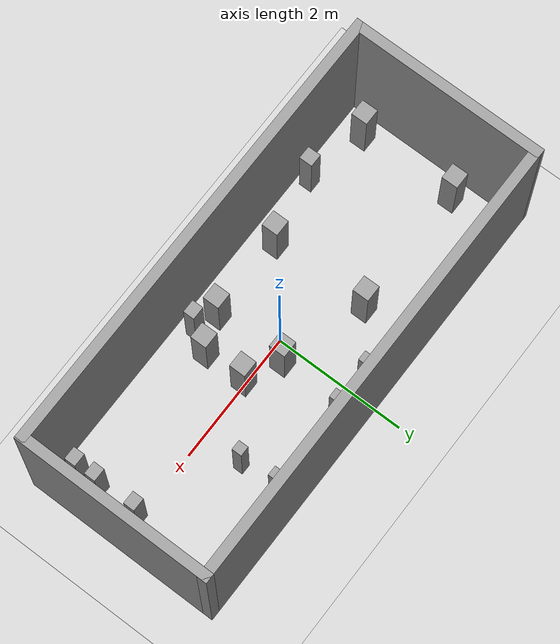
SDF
<sdf version="1.7">
 <world name="default">
  <light name="sun" type="directional">
   <pose>0 0 10 0 -0 0</pose>
   <diffuse>0.8 0.8 0.8 1</diffuse>
   <specular>0.2 0.2 0.2 1</specular>
   <attenuation>
    <range>1000</range>
    <constant>0.9</constant>
    <linear>0.01</linear>
    <quadratic>0.001</quadratic>
   </attenuation>
   <direction>-0.5 0.1 -0.9</direction>
   <spot><inner_angle>0</inner_angle><outer_angle>0</outer_angle><falloff>0</falloff></spot>
  </light>
  <model name="ground_plane">
   <static>1</static>
   <link name="link">
    <collision name="collision">
     <geometry><plane><normal>0 0 1</normal><size>100 100</size></plane></geometry>
     <surface>
      <contact><collide_bitmask>65535</collide_bitmask></contact>
      <friction><ode><mu>100</mu><mu2>50</mu2></ode></friction>
     </surface>
    </collision>
    <visual name="visual">
     <cast_shadows>0</cast_shadows>
     <geometry><plane><normal>0 0 1</normal><size>100 100</size></plane></geometry>
     <material>
      <script><uri>file://media/materials/scripts/gazebo.material</uri><name>Gazebo/Grey</name></script>
     </material>
    </visual>
   </link>
  </model>
  <gravity>0 0 -9.8</gravity>
  <magnetic_field>6e-06 2.3e-05 -4.2e-05</magnetic_field>
  <atmosphere type="adiabatic"/>
  <physics type="ode">
   <max_step_size>0.001</max_step_size>
   <real_time_factor>1</real_time_factor>
   <real_time_update_rate>1000</real_time_update_rate>
  </physics>
  <scene><ambient>0.4 0.4 0.4 1</ambient><background>0.7 0.7 0.7 1</background><shadows>1</shadows></scene>
  <audio><device>default</device></audio>
  <spherical_coordinates>
   <surface_model>EARTH_WGS84</surface_model>
   <latitude_deg>0</latitude_deg>
   <longitude_deg>0</longitude_deg>
   <elevation>0</elevation>
   <heading_deg>0</heading_deg>
  </spherical_coordinates>
  <model name="linha_girador">
   <link name="link_0">
    <inertial>
     <mass>1</mass>
     <inertia>
      <ixx>0.166667</ixx>
      <ixy>0</ixy>
      <ixz>0</ixz>
      <iyy>0.166667</iyy>
      <iyz>0</iyz>
      <izz>0.166667</izz>
     </inertia>
    </inertial>
    <pose>-3.34246 -0.710625 0 0 -0 0</pose>
    <visual name="visual">
     <geometry><box><size>0.25 0.25 1</size></box></geometry>
     <material>
      <lighting>1</lighting>
      <script><uri>file://media/materials/scripts/gazebo.material</uri><name>Gazebo/Grey</name></script>
      <shader type="pixel"><normal_map>__default__</normal_map></shader>
      <ambient>0.3 0.3 0.3 1</ambient>
      <diffuse>0.7 0.7 0.7 1</diffuse>
      <specular>0.01 0.01 0.01 1</specular>
      <emissive>0 0 0 1</emissive>
     </material>
    </visual>
    <collision name="collision">
     <geometry><box><size>0.25 0.25 1</size></box></geometry>
     <surface>
      <friction>
       <ode><mu>1</mu><mu2>1</mu2><fdir1>0 0 0</fdir1><slip1>0</slip1><slip2>0</slip2></ode>
       <torsional>
        <coefficient>1</coefficient>
        <patch_radius>0</patch_radius>
        <surface_radius>0</surface_radius>
        <use_patch_radius>1</use_patch_radius>
        <ode><slip>0</slip></ode>
       </torsional>
      </friction>
      <bounce><restitution_coefficient>0</restitution_coefficient><threshold>1e+06</threshold></bounce>
      <contact>
       <collide_without_contact>0</collide_without_contact>
       <collide_without_contact_bitmask>1</collide_without_contact_bitmask>
       <collide_bitmask>1</collide_bitmask>
       <ode>
        <soft_cfm>0</soft_cfm>
        <soft_erp>0.2</soft_erp>
        <kp>1e+13</kp>
        <kd>1</kd>
        <max_vel>0.01</max_vel>
        <min_depth>0</min_depth>
       </ode>
       <bullet>
        <split_impulse>1</split_impulse>
        <split_impulse_penetration_threshold>-0.01</split_impulse_penetration_threshold>
        <soft_cfm>0</soft_cfm>
        <soft_erp>0.2</soft_erp>
        <kp>1e+13</kp>
        <kd>1</kd>
       </bullet>
      </contact>
     </surface>
    </collision>
   </link>
   <link name="link_0_clone_0">
    <inertial>
     <mass>1</mass>
     <inertia>
      <ixx>0.166667</ixx>
      <ixy>0</ixy>
      <ixz>0</ixz>
      <iyy>0.166667</iyy>
      <iyz>0</iyz>
      <izz>0.166667</izz>
     </inertia>
    </inertial>
    <pose>-3.34246 0.789375 0 0 -0 0</pose>
    <visual name="visual">
     <geometry><box><size>0.25 0.25 1</size></box></geometry>
     <material>
      <lighting>1</lighting>
      <script><uri>file://media/materials/scripts/gazebo.material</uri><name>Gazebo/Grey</name></script>
      <shader type="pixel"><normal_map>__default__</normal_map></shader>
      <ambient>0.3 0.3 0.3 1</ambient>
      <diffuse>0.7 0.7 0.7 1</diffuse>
      <specular>0.01 0.01 0.01 1</specular>
      <emissive>0 0 0 1</emissive>
     </material>
    </visual>
    <collision name="collision">
     <geometry><box><size>0.25 0.25 1</size></box></geometry>
     <surface>
      <friction>
       <ode><mu>1</mu><mu2>1</mu2><fdir1>0 0 0</fdir1><slip1>0</slip1><slip2>0</slip2></ode>
       <torsional>
        <coefficient>1</coefficient>
        <patch_radius>0</patch_radius>
        <surface_radius>0</surface_radius>
        <use_patch_radius>1</use_patch_radius>
        <ode><slip>0</slip></ode>
       </torsional>
      </friction>
      <bounce><restitution_coefficient>0</restitution_coefficient><threshold>1e+06</threshold></bounce>
      <contact>
       <collide_without_contact>0</collide_without_contact>
       <collide_without_contact_bitmask>1</collide_without_contact_bitmask>
       <collide_bitmask>1</collide_bitmask>
       <ode>
        <soft_cfm>0</soft_cfm>
        <soft_erp>0.2</soft_erp>
        <kp>1e+13</kp>
        <kd>1</kd>
        <max_vel>0.01</max_vel>
        <min_depth>0</min_depth>
       </ode>
       <bullet>
        <split_impulse>1</split_impulse>
        <split_impulse_penetration_threshold>-0.01</split_impulse_penetration_threshold>
        <soft_cfm>0</soft_cfm>
        <soft_erp>0.2</soft_erp>
        <kp>1e+13</kp>
        <kd>1</kd>
       </bullet>
      </contact>
     </surface>
    </collision>
   </link>
   <link name="link_0_clone_0_clone">
    <inertial>
     <mass>1</mass>
     <inertia>
      <ixx>0.166667</ixx>
      <ixy>0</ixy>
      <ixz>0</ixz>
      <iyy>0.166667</iyy>
      <iyz>0</iyz>
      <izz>0.166667</izz>
     </inertia>
    </inertial>
    <pose>-1.36246 0.789375 0 0 -0 0</pose>
    <visual name="visual">
     <geometry><box><size>0.25 0.25 1</size></box></geometry>
     <material>
      <lighting>1</lighting>
      <script><uri>file://media/materials/scripts/gazebo.material</uri><name>Gazebo/Grey</name></script>
      <shader type="pixel"><normal_map>__default__</normal_map></shader>
      <ambient>0.3 0.3 0.3 1</ambient>
      <diffuse>0.7 0.7 0.7 1</diffuse>
      <specular>0.01 0.01 0.01 1</specular>
      <emissive>0 0 0 1</emissive>
     </material>
    </visual>
    <collision name="collision">
     <geometry><box><size>0.25 0.25 1</size></box></geometry>
     <surface>
      <friction>
       <ode><mu>1</mu><mu2>1</mu2><fdir1>0 0 0</fdir1><slip1>0</slip1><slip2>0</slip2></ode>
       <torsional>
        <coefficient>1</coefficient>
        <patch_radius>0</patch_radius>
        <surface_radius>0</surface_radius>
        <use_patch_radius>1</use_patch_radius>
        <ode><slip>0</slip></ode>
       </torsional>
      </friction>
      <bounce><restitution_coefficient>0</restitution_coefficient><threshold>1e+06</threshold></bounce>
      <contact>
       <collide_without_contact>0</collide_without_contact>
       <collide_without_contact_bitmask>1</collide_without_contact_bitmask>
       <collide_bitmask>1</collide_bitmask>
       <ode>
        <soft_cfm>0</soft_cfm>
        <soft_erp>0.2</soft_erp>
        <kp>1e+13</kp>
        <kd>1</kd>
        <max_vel>0.01</max_vel>
        <min_depth>0</min_depth>
       </ode>
       <bullet>
        <split_impulse>1</split_impulse>
        <split_impulse_penetration_threshold>-0.01</split_impulse_penetration_threshold>
        <soft_cfm>0</soft_cfm>
        <soft_erp>0.2</soft_erp>
        <kp>1e+13</kp>
        <kd>1</kd>
       </bullet>
      </contact>
     </surface>
    </collision>
   </link>
   <link name="link_0_clone_0_clone_clone">
    <inertial>
     <mass>1</mass>
     <inertia>
      <ixx>0.166667</ixx>
      <ixy>0</ixy>
      <ixz>0</ixz>
      <iyy>0.166667</iyy>
      <iyz>0</iyz>
      <izz>0.166667</izz>
     </inertia>
    </inertial>
    <pose>-1.36246 -0.710625 0 0 -0 0</pose>
    <visual name="visual">
     <geometry><box><size>0.25 0.25 1</size></box></geometry>
     <material>
      <lighting>1</lighting>
      <script><uri>file://media/materials/scripts/gazebo.material</uri><name>Gazebo/Grey</name></script>
      <shader type="pixel"><normal_map>__default__</normal_map></shader>
      <ambient>0.3 0.3 0.3 1</ambient>
      <diffuse>0.7 0.7 0.7 1</diffuse>
      <specular>0.01 0.01 0.01 1</specular>
      <emissive>0 0 0 1</emissive>
     </material>
    </visual>
    <collision name="collision">
     <geometry><box><size>0.25 0.25 1</size></box></geometry>
     <surface>
      <friction>
       <ode><mu>1</mu><mu2>1</mu2><fdir1>0 0 0</fdir1><slip1>0</slip1><slip2>0</slip2></ode>
       <torsional>
        <coefficient>1</coefficient>
        <patch_radius>0</patch_radius>
        <surface_radius>0</surface_radius>
        <use_patch_radius>1</use_patch_radius>
        <ode><slip>0</slip></ode>
       </torsional>
      </friction>
      <bounce><restitution_coefficient>0</restitution_coefficient><threshold>1e+06</threshold></bounce>
      <contact>
       <collide_without_contact>0</collide_without_contact>
       <collide_without_contact_bitmask>1</collide_without_contact_bitmask>
       <collide_bitmask>1</collide_bitmask>
       <ode>
        <soft_cfm>0</soft_cfm>
        <soft_erp>0.2</soft_erp>
        <kp>1e+13</kp>
        <kd>1</kd>
        <max_vel>0.01</max_vel>
        <min_depth>0</min_depth>
       </ode>
       <bullet>
        <split_impulse>1</split_impulse>
        <split_impulse_penetration_threshold>-0.01</split_impulse_penetration_threshold>
        <soft_cfm>0</soft_cfm>
        <soft_erp>0.2</soft_erp>
        <kp>1e+13</kp>
        <kd>1</kd>
       </bullet>
      </contact>
     </surface>
    </collision>
   </link>
   <link name="link_0_clone_0_clone_clone_0">
    <inertial>
     <mass>1</mass>
     <inertia>
      <ixx>0.166667</ixx>
      <ixy>0</ixy>
      <ixz>0</ixz>
      <iyy>0.166667</iyy>
      <iyz>0</iyz>
      <izz>0.166667</izz>
     </inertia>
    </inertial>
    <pose>-2.39246 -0.910625 0 0 -0 0</pose>
    <visual name="visual">
     <geometry><box><size>0.2 0.2 1</size></box></geometry>
     <material>
      <lighting>1</lighting>
      <script><uri>file://media/materials/scripts/gazebo.material</uri><name>Gazebo/Grey</name></script>
      <shader type="pixel"><normal_map>__default__</normal_map></shader>
      <ambient>0.3 0.3 0.3 1</ambient>
      <diffuse>0.7 0.7 0.7 1</diffuse>
      <specular>0.01 0.01 0.01 1</specular>
      <emissive>0 0 0 1</emissive>
     </material>
    </visual>
    <collision name="collision">
     <geometry><box><size>0.2 0.2 1</size></box></geometry>
     <surface>
      <friction>
       <ode><mu>1</mu><mu2>1</mu2><fdir1>0 0 0</fdir1><slip1>0</slip1><slip2>0</slip2></ode>
       <torsional>
        <coefficient>1</coefficient>
        <patch_radius>0</patch_radius>
        <surface_radius>0</surface_radius>
        <use_patch_radius>1</use_patch_radius>
        <ode><slip>0</slip></ode>
       </torsional>
      </friction>
      <bounce><restitution_coefficient>0</restitution_coefficient><threshold>1e+06</threshold></bounce>
      <contact>
       <collide_without_contact>0</collide_without_contact>
       <collide_without_contact_bitmask>1</collide_without_contact_bitmask>
       <collide_bitmask>1</collide_bitmask>
       <ode>
        <soft_cfm>0</soft_cfm>
        <soft_erp>0.2</soft_erp>
        <kp>1e+13</kp>
        <kd>1</kd>
        <max_vel>0.01</max_vel>
        <min_depth>0</min_depth>
       </ode>
       <bullet>
        <split_impulse>1</split_impulse>
        <split_impulse_penetration_threshold>-0.01</split_impulse_penetration_threshold>
        <soft_cfm>0</soft_cfm>
        <soft_erp>0.2</soft_erp>
        <kp>1e+13</kp>
        <kd>1</kd>
       </bullet>
      </contact>
     </surface>
    </collision>
   </link>
   <link name="link_0_clone_0_clone_clone_clone">
    <inertial>
     <mass>1</mass>
     <inertia>
      <ixx>0.166667</ixx>
      <ixy>0</ixy>
      <ixz>0</ixz>
      <iyy>0.166667</iyy>
      <iyz>0</iyz>
      <izz>0.166667</izz>
     </inertia>
    </inertial>
    <pose>-0.092461 -0.710625 0 0 -0 0</pose>
    <visual name="visual">
     <geometry><box><size>0.25 0.25 1</size></box></geometry>
     <material>
      <lighting>1</lighting>
      <script><uri>file://media/materials/scripts/gazebo.material</uri><name>Gazebo/Grey</name></script>
      <shader type="pixel"><normal_map>__default__</normal_map></shader>
      <ambient>0.3 0.3 0.3 1</ambient>
      <diffuse>0.7 0.7 0.7 1</diffuse>
      <specular>0.01 0.01 0.01 1</specular>
      <emissive>0 0 0 1</emissive>
     </material>
    </visual>
    <collision name="collision">
     <geometry><box><size>0.25 0.25 1</size></box></geometry>
     <surface>
      <friction>
       <ode><mu>1</mu><mu2>1</mu2><fdir1>0 0 0</fdir1><slip1>0</slip1><slip2>0</slip2></ode>
       <torsional>
        <coefficient>1</coefficient>
        <patch_radius>0</patch_radius>
        <surface_radius>0</surface_radius>
        <use_patch_radius>1</use_patch_radius>
        <ode><slip>0</slip></ode>
       </torsional>
      </friction>
      <bounce><restitution_coefficient>0</restitution_coefficient><threshold>1e+06</threshold></bounce>
      <contact>
       <collide_without_contact>0</collide_without_contact>
       <collide_without_contact_bitmask>1</collide_without_contact_bitmask>
       <collide_bitmask>1</collide_bitmask>
       <ode>
        <soft_cfm>0</soft_cfm>
        <soft_erp>0.2</soft_erp>
        <kp>1e+13</kp>
        <kd>1</kd>
        <max_vel>0.01</max_vel>
        <min_depth>0</min_depth>
       </ode>
       <bullet>
        <split_impulse>1</split_impulse>
        <split_impulse_penetration_threshold>-0.01</split_impulse_penetration_threshold>
        <soft_cfm>0</soft_cfm>
        <soft_erp>0.2</soft_erp>
        <kp>1e+13</kp>
        <kd>1</kd>
       </bullet>
      </contact>
     </surface>
    </collision>
   </link>
   <link name="link_0_clone_0_clone_clone_clone_clone">
    <inertial>
     <mass>1</mass>
     <inertia>
      <ixx>0.166667</ixx>
      <ixy>0</ixy>
      <ixz>0</ixz>
      <iyy>0.166667</iyy>
      <iyz>0</iyz>
      <izz>0.166667</izz>
     </inertia>
    </inertial>
    <pose>-0.092461 0.379375 0 0 -0 0</pose>
    <visual name="visual">
     <geometry><box><size>0.25 0.25 1</size></box></geometry>
     <material>
      <lighting>1</lighting>
      <script><uri>file://media/materials/scripts/gazebo.material</uri><name>Gazebo/Grey</name></script>
      <shader type="pixel"><normal_map>__default__</normal_map></shader>
      <ambient>0.3 0.3 0.3 1</ambient>
      <diffuse>0.7 0.7 0.7 1</diffuse>
      <specular>0.01 0.01 0.01 1</specular>
      <emissive>0 0 0 1</emissive>
     </material>
    </visual>
    <collision name="collision">
     <geometry><box><size>0.25 0.25 1</size></box></geometry>
     <surface>
      <friction>
       <ode><mu>1</mu><mu2>1</mu2><fdir1>0 0 0</fdir1><slip1>0</slip1><slip2>0</slip2></ode>
       <torsional>
        <coefficient>1</coefficient>
        <patch_radius>0</patch_radius>
        <surface_radius>0</surface_radius>
        <use_patch_radius>1</use_patch_radius>
        <ode><slip>0</slip></ode>
       </torsional>
      </friction>
      <bounce><restitution_coefficient>0</restitution_coefficient><threshold>1e+06</threshold></bounce>
      <contact>
       <collide_without_contact>0</collide_without_contact>
       <collide_without_contact_bitmask>1</collide_without_contact_bitmask>
       <collide_bitmask>1</collide_bitmask>
       <ode>
        <soft_cfm>0</soft_cfm>
        <soft_erp>0.2</soft_erp>
        <kp>1e+13</kp>
        <kd>1</kd>
        <max_vel>0.01</max_vel>
        <min_depth>0</min_depth>
       </ode>
       <bullet>
        <split_impulse>1</split_impulse>
        <split_impulse_penetration_threshold>-0.01</split_impulse_penetration_threshold>
        <soft_cfm>0</soft_cfm>
        <soft_erp>0.2</soft_erp>
        <kp>1e+13</kp>
        <kd>1</kd>
       </bullet>
      </contact>
     </surface>
    </collision>
   </link>
   <link name="link_0_clone_0_clone_clone_clone_clone_0">
    <inertial>
     <mass>1</mass>
     <inertia>
      <ixx>0.166667</ixx>
      <ixy>0</ixy>
      <ixz>0</ixz>
      <iyy>0.166667</iyy>
      <iyz>0</iyz>
      <izz>0.166667</izz>
     </inertia>
    </inertial>
    <pose>0.432539 0.129375 0 0 -0 0</pose>
    <visual name="visual">
     <geometry><box><size>0.25 0.25 1</size></box></geometry>
     <material>
      <lighting>1</lighting>
      <script><uri>file://media/materials/scripts/gazebo.material</uri><name>Gazebo/Grey</name></script>
      <shader type="pixel"><normal_map>__default__</normal_map></shader>
      <ambient>0.3 0.3 0.3 1</ambient>
      <diffuse>0.7 0.7 0.7 1</diffuse>
      <specular>0.01 0.01 0.01 1</specular>
      <emissive>0 0 0 1</emissive>
     </material>
    </visual>
    <collision name="collision">
     <geometry><box><size>0.25 0.25 1</size></box></geometry>
     <surface>
      <friction>
       <ode><mu>1</mu><mu2>1</mu2><fdir1>0 0 0</fdir1><slip1>0</slip1><slip2>0</slip2></ode>
       <torsional>
        <coefficient>1</coefficient>
        <patch_radius>0</patch_radius>
        <surface_radius>0</surface_radius>
        <use_patch_radius>1</use_patch_radius>
        <ode><slip>0</slip></ode>
       </torsional>
      </friction>
      <bounce><restitution_coefficient>0</restitution_coefficient><threshold>1e+06</threshold></bounce>
      <contact>
       <collide_without_contact>0</collide_without_contact>
       <collide_without_contact_bitmask>1</collide_without_contact_bitmask>
       <collide_bitmask>1</collide_bitmask>
       <ode>
        <soft_cfm>0</soft_cfm>
        <soft_erp>0.2</soft_erp>
        <kp>1e+13</kp>
        <kd>1</kd>
        <max_vel>0.01</max_vel>
        <min_depth>0</min_depth>
       </ode>
       <bullet>
        <split_impulse>1</split_impulse>
        <split_impulse_penetration_threshold>-0.01</split_impulse_penetration_threshold>
        <soft_cfm>0</soft_cfm>
        <soft_erp>0.2</soft_erp>
        <kp>1e+13</kp>
        <kd>1</kd>
       </bullet>
      </contact>
     </surface>
    </collision>
   </link>
   <link name="link_0_clone_0_clone_clone_clone_clone_0_clone">
    <inertial>
     <mass>1</mass>
     <inertia>
      <ixx>0.166667</ixx>
      <ixy>0</ixy>
      <ixz>0</ixz>
      <iyy>0.166667</iyy>
      <iyz>0</iyz>
      <izz>0.166667</izz>
     </inertia>
    </inertial>
    <pose>0.432542 -0.510625 0 0 -0 0</pose>
    <visual name="visual">
     <geometry><box><size>0.25 0.25 1</size></box></geometry>
     <material>
      <lighting>1</lighting>
      <script><uri>file://media/materials/scripts/gazebo.material</uri><name>Gazebo/Grey</name></script>
      <shader type="pixel"><normal_map>__default__</normal_map></shader>
      <ambient>0.3 0.3 0.3 1</ambient>
      <diffuse>0.7 0.7 0.7 1</diffuse>
      <specular>0.01 0.01 0.01 1</specular>
      <emissive>0 0 0 1</emissive>
     </material>
    </visual>
    <collision name="collision">
     <geometry><box><size>0.25 0.25 1</size></box></geometry>
     <surface>
      <friction>
       <ode><mu>1</mu><mu2>1</mu2><fdir1>0 0 0</fdir1><slip1>0</slip1><slip2>0</slip2></ode>
       <torsional>
        <coefficient>1</coefficient>
        <patch_radius>0</patch_radius>
        <surface_radius>0</surface_radius>
        <use_patch_radius>1</use_patch_radius>
        <ode><slip>0</slip></ode>
       </torsional>
      </friction>
      <bounce><restitution_coefficient>0</restitution_coefficient><threshold>1e+06</threshold></bounce>
      <contact>
       <collide_without_contact>0</collide_without_contact>
       <collide_without_contact_bitmask>1</collide_without_contact_bitmask>
       <collide_bitmask>1</collide_bitmask>
       <ode>
        <soft_cfm>0</soft_cfm>
        <soft_erp>0.2</soft_erp>
        <kp>1e+13</kp>
        <kd>1</kd>
        <max_vel>0.01</max_vel>
        <min_depth>0</min_depth>
       </ode>
       <bullet>
        <split_impulse>1</split_impulse>
        <split_impulse_penetration_threshold>-0.01</split_impulse_penetration_threshold>
        <soft_cfm>0</soft_cfm>
        <soft_erp>0.2</soft_erp>
        <kp>1e+13</kp>
        <kd>1</kd>
       </bullet>
      </contact>
     </surface>
    </collision>
   </link>
   <link name="link_0_clone_0_clone_clone_clone_clone_0_clone_0">
    <inertial>
     <mass>1</mass>
     <inertia>
      <ixx>0.166667</ixx>
      <ixy>0</ixy>
      <ixz>0</ixz>
      <iyy>0.166667</iyy>
      <iyz>0</iyz>
      <izz>0.166667</izz>
     </inertia>
    </inertial>
    <pose>0.242542 -0.835625 0 0 -0 0</pose>
    <visual name="visual">
     <geometry><box><size>0.2 0.17 1</size></box></geometry>
     <material>
      <lighting>1</lighting>
      <script><uri>file://media/materials/scripts/gazebo.material</uri><name>Gazebo/Grey</name></script>
      <shader type="pixel"><normal_map>__default__</normal_map></shader>
      <ambient>0.3 0.3 0.3 1</ambient>
      <diffuse>0.7 0.7 0.7 1</diffuse>
      <specular>0.01 0.01 0.01 1</specular>
      <emissive>0 0 0 1</emissive>
     </material>
    </visual>
    <collision name="collision">
     <geometry><box><size>0.2 0.17 1</size></box></geometry>
     <surface>
      <friction>
       <ode><mu>1</mu><mu2>1</mu2><fdir1>0 0 0</fdir1><slip1>0</slip1><slip2>0</slip2></ode>
       <torsional>
        <coefficient>1</coefficient>
        <patch_radius>0</patch_radius>
        <surface_radius>0</surface_radius>
        <use_patch_radius>1</use_patch_radius>
        <ode><slip>0</slip></ode>
       </torsional>
      </friction>
      <bounce><restitution_coefficient>0</restitution_coefficient><threshold>1e+06</threshold></bounce>
      <contact>
       <collide_without_contact>0</collide_without_contact>
       <collide_without_contact_bitmask>1</collide_without_contact_bitmask>
       <collide_bitmask>1</collide_bitmask>
       <ode>
        <soft_cfm>0</soft_cfm>
        <soft_erp>0.2</soft_erp>
        <kp>1e+13</kp>
        <kd>1</kd>
        <max_vel>0.01</max_vel>
        <min_depth>0</min_depth>
       </ode>
       <bullet>
        <split_impulse>1</split_impulse>
        <split_impulse_penetration_threshold>-0.01</split_impulse_penetration_threshold>
        <soft_cfm>0</soft_cfm>
        <soft_erp>0.2</soft_erp>
        <kp>1e+13</kp>
        <kd>1</kd>
       </bullet>
      </contact>
     </surface>
    </collision>
   </link>
   <link name="link_0_clone_0_clone_clone_clone_clone_0_clone_0_clone">
    <inertial>
     <mass>1</mass>
     <inertia>
      <ixx>0.166667</ixx>
      <ixy>0</ixy>
      <ixz>0</ixz>
      <iyy>0.166667</iyy>
      <iyz>0</iyz>
      <izz>0.166667</izz>
     </inertia>
    </inertial>
    <pose>2.72254 0.129375 0 0 -0 0</pose>
    <visual name="visual">
     <geometry><box><size>0.2 0.17 1</size></box></geometry>
     <material>
      <lighting>1</lighting>
      <script><uri>file://media/materials/scripts/gazebo.material</uri><name>Gazebo/Grey</name></script>
      <shader type="pixel"><normal_map>__default__</normal_map></shader>
      <ambient>0.3 0.3 0.3 1</ambient>
      <diffuse>0.7 0.7 0.7 1</diffuse>
      <specular>0.01 0.01 0.01 1</specular>
      <emissive>0 0 0 1</emissive>
     </material>
    </visual>
    <collision name="collision">
     <geometry><box><size>0.2 0.17 1</size></box></geometry>
     <surface>
      <friction>
       <ode><mu>1</mu><mu2>1</mu2><fdir1>0 0 0</fdir1><slip1>0</slip1><slip2>0</slip2></ode>
       <torsional>
        <coefficient>1</coefficient>
        <patch_radius>0</patch_radius>
        <surface_radius>0</surface_radius>
        <use_patch_radius>1</use_patch_radius>
        <ode><slip>0</slip></ode>
       </torsional>
      </friction>
      <bounce><restitution_coefficient>0</restitution_coefficient><threshold>1e+06</threshold></bounce>
      <contact>
       <collide_without_contact>0</collide_without_contact>
       <collide_without_contact_bitmask>1</collide_without_contact_bitmask>
       <collide_bitmask>1</collide_bitmask>
       <ode>
        <soft_cfm>0</soft_cfm>
        <soft_erp>0.2</soft_erp>
        <kp>1e+13</kp>
        <kd>1</kd>
        <max_vel>0.01</max_vel>
        <min_depth>0</min_depth>
       </ode>
       <bullet>
        <split_impulse>1</split_impulse>
        <split_impulse_penetration_threshold>-0.01</split_impulse_penetration_threshold>
        <soft_cfm>0</soft_cfm>
        <soft_erp>0.2</soft_erp>
        <kp>1e+13</kp>
        <kd>1</kd>
       </bullet>
      </contact>
     </surface>
    </collision>
   </link>
   <link name="link_0_clone_0_clone_clone_clone_clone_0_clone_1">
    <inertial>
     <mass>1</mass>
     <inertia>
      <ixx>0.166667</ixx>
      <ixy>0</ixy>
      <ixz>0</ixz>
      <iyy>0.166667</iyy>
      <iyz>0</iyz>
      <izz>0.166667</izz>
     </inertia>
    </inertial>
    <pose>1.34754 0.789375 0 0 -0 0</pose>
    <visual name="visual">
     <geometry><box><size>0.15 0.15 1</size></box></geometry>
     <material>
      <lighting>1</lighting>
      <script><uri>file://media/materials/scripts/gazebo.material</uri><name>Gazebo/Grey</name></script>
      <shader type="pixel"><normal_map>__default__</normal_map></shader>
      <ambient>0.3 0.3 0.3 1</ambient>
      <diffuse>0.7 0.7 0.7 1</diffuse>
      <specular>0.01 0.01 0.01 1</specular>
      <emissive>0 0 0 1</emissive>
     </material>
    </visual>
    <collision name="collision">
     <geometry><box><size>0.15 0.15 1</size></box></geometry>
     <surface>
      <friction>
       <ode><mu>1</mu><mu2>1</mu2><fdir1>0 0 0</fdir1><slip1>0</slip1><slip2>0</slip2></ode>
       <torsional>
        <coefficient>1</coefficient>
        <patch_radius>0</patch_radius>
        <surface_radius>0</surface_radius>
        <use_patch_radius>1</use_patch_radius>
        <ode><slip>0</slip></ode>
       </torsional>
      </friction>
      <bounce><restitution_coefficient>0</restitution_coefficient><threshold>1e+06</threshold></bounce>
      <contact>
       <collide_without_contact>0</collide_without_contact>
       <collide_without_contact_bitmask>1</collide_without_contact_bitmask>
       <collide_bitmask>1</collide_bitmask>
       <ode>
        <soft_cfm>0</soft_cfm>
        <soft_erp>0.2</soft_erp>
        <kp>1e+13</kp>
        <kd>1</kd>
        <max_vel>0.01</max_vel>
        <min_depth>0</min_depth>
       </ode>
       <bullet>
        <split_impulse>1</split_impulse>
        <split_impulse_penetration_threshold>-0.01</split_impulse_penetration_threshold>
        <soft_cfm>0</soft_cfm>
        <soft_erp>0.2</soft_erp>
        <kp>1e+13</kp>
        <kd>1</kd>
       </bullet>
      </contact>
     </surface>
    </collision>
   </link>
   <link name="link_0_clone_0_clone_clone_clone_clone_0_clone_1_clone">
    <inertial>
     <mass>1</mass>
     <inertia>
      <ixx>0.166667</ixx>
      <ixy>0</ixy>
      <ixz>0</ixz>
      <iyy>0.166667</iyy>
      <iyz>0</iyz>
      <izz>0.166667</izz>
     </inertia>
    </inertial>
    <pose>1.33378 1.36437 0 0 -0 0</pose>
    <visual name="visual">
     <geometry><box><size>0.15 0.15 1</size></box></geometry>
     <material>
      <lighting>1</lighting>
      <script><uri>file://media/materials/scripts/gazebo.material</uri><name>Gazebo/Grey</name></script>
      <shader type="pixel"><normal_map>__default__</normal_map></shader>
      <ambient>0.3 0.3 0.3 1</ambient>
      <diffuse>0.7 0.7 0.7 1</diffuse>
      <specular>0.01 0.01 0.01 1</specular>
      <emissive>0 0 0 1</emissive>
     </material>
    </visual>
    <collision name="collision">
     <geometry><box><size>0.15 0.15 1</size></box></geometry>
     <surface>
      <friction>
       <ode><mu>1</mu><mu2>1</mu2><fdir1>0 0 0</fdir1><slip1>0</slip1><slip2>0</slip2></ode>
       <torsional>
        <coefficient>1</coefficient>
        <patch_radius>0</patch_radius>
        <surface_radius>0</surface_radius>
        <use_patch_radius>1</use_patch_radius>
        <ode><slip>0</slip></ode>
       </torsional>
      </friction>
      <bounce><restitution_coefficient>0</restitution_coefficient><threshold>1e+06</threshold></bounce>
      <contact>
       <collide_without_contact>0</collide_without_contact>
       <collide_without_contact_bitmask>1</collide_without_contact_bitmask>
       <collide_bitmask>1</collide_bitmask>
       <ode>
        <soft_cfm>0</soft_cfm>
        <soft_erp>0.2</soft_erp>
        <kp>1e+13</kp>
        <kd>1</kd>
        <max_vel>0.01</max_vel>
        <min_depth>0</min_depth>
       </ode>
       <bullet>
        <split_impulse>1</split_impulse>
        <split_impulse_penetration_threshold>-0.01</split_impulse_penetration_threshold>
        <soft_cfm>0</soft_cfm>
        <soft_erp>0.2</soft_erp>
        <kp>1e+13</kp>
        <kd>1</kd>
       </bullet>
      </contact>
     </surface>
    </collision>
   </link>
   <link name="link_0_clone_0_clone_clone_clone_clone_0_clone_1_clone_clone">
    <inertial>
     <mass>1</mass>
     <inertia>
      <ixx>0.166667</ixx>
      <ixy>0</ixy>
      <ixz>0</ixz>
      <iyy>0.166667</iyy>
      <iyz>0</iyz>
      <izz>0.166667</izz>
     </inertia>
    </inertial>
    <pose>0.030629 1.36437 0 0 -0 0</pose>
    <visual name="visual">
     <geometry><box><size>0.15 0.15 1</size></box></geometry>
     <material>
      <lighting>1</lighting>
      <script><uri>file://media/materials/scripts/gazebo.material</uri><name>Gazebo/Grey</name></script>
      <shader type="pixel"><normal_map>__default__</normal_map></shader>
      <ambient>0.3 0.3 0.3 1</ambient>
      <diffuse>0.7 0.7 0.7 1</diffuse>
      <specular>0.01 0.01 0.01 1</specular>
      <emissive>0 0 0 1</emissive>
     </material>
    </visual>
    <collision name="collision">
     <geometry><box><size>0.15 0.15 1</size></box></geometry>
     <surface>
      <friction>
       <ode><mu>1</mu><mu2>1</mu2><fdir1>0 0 0</fdir1><slip1>0</slip1><slip2>0</slip2></ode>
       <torsional>
        <coefficient>1</coefficient>
        <patch_radius>0</patch_radius>
        <surface_radius>0</surface_radius>
        <use_patch_radius>1</use_patch_radius>
        <ode><slip>0</slip></ode>
       </torsional>
      </friction>
      <bounce><restitution_coefficient>0</restitution_coefficient><threshold>1e+06</threshold></bounce>
      <contact>
       <collide_without_contact>0</collide_without_contact>
       <collide_without_contact_bitmask>1</collide_without_contact_bitmask>
       <collide_bitmask>1</collide_bitmask>
       <ode>
        <soft_cfm>0</soft_cfm>
        <soft_erp>0.2</soft_erp>
        <kp>1e+13</kp>
        <kd>1</kd>
        <max_vel>0.01</max_vel>
        <min_depth>0</min_depth>
       </ode>
       <bullet>
        <split_impulse>1</split_impulse>
        <split_impulse_penetration_threshold>-0.01</split_impulse_penetration_threshold>
        <soft_cfm>0</soft_cfm>
        <soft_erp>0.2</soft_erp>
        <kp>1e+13</kp>
        <kd>1</kd>
       </bullet>
      </contact>
     </surface>
    </collision>
   </link>
   <link name="link_0_clone_0_clone_clone_clone_clone_0_clone_1_clone_clone_clone">
    <inertial>
     <mass>1</mass>
     <inertia>
      <ixx>0.166667</ixx>
      <ixy>0</ixy>
      <ixz>0</ixz>
      <iyy>0.166667</iyy>
      <iyz>0</iyz>
      <izz>0.166667</izz>
     </inertia>
    </inertial>
    <pose>-0.6 1.36437 0 0 -0 0</pose>
    <visual name="visual">
     <geometry><box><size>0.15 0.15 1</size></box></geometry>
     <material>
      <lighting>1</lighting>
      <script><uri>file://media/materials/scripts/gazebo.material</uri><name>Gazebo/Grey</name></script>
      <shader type="pixel"><normal_map>__default__</normal_map></shader>
      <ambient>0.3 0.3 0.3 1</ambient>
      <diffuse>0.7 0.7 0.7 1</diffuse>
      <specular>0.01 0.01 0.01 1</specular>
      <emissive>0 0 0 1</emissive>
     </material>
    </visual>
    <collision name="collision">
     <geometry><box><size>0.15 0.15 1</size></box></geometry>
     <surface>
      <friction>
       <ode><mu>1</mu><mu2>1</mu2><fdir1>0 0 0</fdir1><slip1>0</slip1><slip2>0</slip2></ode>
       <torsional>
        <coefficient>1</coefficient>
        <patch_radius>0</patch_radius>
        <surface_radius>0</surface_radius>
        <use_patch_radius>1</use_patch_radius>
        <ode><slip>0</slip></ode>
       </torsional>
      </friction>
      <bounce><restitution_coefficient>0</restitution_coefficient><threshold>1e+06</threshold></bounce>
      <contact>
       <collide_without_contact>0</collide_without_contact>
       <collide_without_contact_bitmask>1</collide_without_contact_bitmask>
       <collide_bitmask>1</collide_bitmask>
       <ode>
        <soft_cfm>0</soft_cfm>
        <soft_erp>0.2</soft_erp>
        <kp>1e+13</kp>
        <kd>1</kd>
        <max_vel>0.01</max_vel>
        <min_depth>0</min_depth>
       </ode>
       <bullet>
        <split_impulse>1</split_impulse>
        <split_impulse_penetration_threshold>-0.01</split_impulse_penetration_threshold>
        <soft_cfm>0</soft_cfm>
        <soft_erp>0.2</soft_erp>
        <kp>1e+13</kp>
        <kd>1</kd>
       </bullet>
      </contact>
     </surface>
    </collision>
   </link>
   <link name="link_0_clone_0_clone_clone_clone_clone_1">
    <inertial>
     <mass>1</mass>
     <inertia>
      <ixx>0.166667</ixx>
      <ixy>0</ixy>
      <ixz>0</ixz>
      <iyy>0.166667</iyy>
      <iyz>0</iyz>
      <izz>0.166667</izz>
     </inertia>
    </inertial>
    <pose>2.72254 -0.835625 0 0 -0 0</pose>
    <visual name="visual">
     <geometry><box><size>0.2 0.17 1</size></box></geometry>
     <material>
      <lighting>1</lighting>
      <script><uri>file://media/materials/scripts/gazebo.material</uri><name>Gazebo/Grey</name></script>
      <shader type="pixel"><normal_map>__default__</normal_map></shader>
      <ambient>0.3 0.3 0.3 1</ambient>
      <diffuse>0.7 0.7 0.7 1</diffuse>
      <specular>0.01 0.01 0.01 1</specular>
      <emissive>0 0 0 1</emissive>
     </material>
    </visual>
    <collision name="collision">
     <geometry><box><size>0.2 0.17 1</size></box></geometry>
     <surface>
      <friction>
       <ode><mu>1</mu><mu2>1</mu2><fdir1>0 0 0</fdir1><slip1>0</slip1><slip2>0</slip2></ode>
       <torsional>
        <coefficient>1</coefficient>
        <patch_radius>0</patch_radius>
        <surface_radius>0</surface_radius>
        <use_patch_radius>1</use_patch_radius>
        <ode><slip>0</slip></ode>
       </torsional>
      </friction>
      <bounce><restitution_coefficient>0</restitution_coefficient><threshold>1e+06</threshold></bounce>
      <contact>
       <collide_without_contact>0</collide_without_contact>
       <collide_without_contact_bitmask>1</collide_without_contact_bitmask>
       <collide_bitmask>1</collide_bitmask>
       <ode>
        <soft_cfm>0</soft_cfm>
        <soft_erp>0.2</soft_erp>
        <kp>1e+13</kp>
        <kd>1</kd>
        <max_vel>0.01</max_vel>
        <min_depth>0</min_depth>
       </ode>
       <bullet>
        <split_impulse>1</split_impulse>
        <split_impulse_penetration_threshold>-0.01</split_impulse_penetration_threshold>
        <soft_cfm>0</soft_cfm>
        <soft_erp>0.2</soft_erp>
        <kp>1e+13</kp>
        <kd>1</kd>
       </bullet>
      </contact>
     </surface>
    </collision>
   </link>
   <link name="link_0_clone_0_clone_clone_clone_clone_2">
    <inertial>
     <mass>1</mass>
     <inertia>
      <ixx>0.166667</ixx>
      <ixy>0</ixy>
      <ixz>0</ixz>
      <iyy>0.166667</iyy>
      <iyz>0</iyz>
      <izz>0.166667</izz>
     </inertia>
    </inertial>
    <pose>2.72254 -0.510625 0 0 -0 0</pose>
    <visual name="visual">
     <geometry><box><size>0.2 0.17 1</size></box></geometry>
     <material>
      <lighting>1</lighting>
      <script><uri>file://media/materials/scripts/gazebo.material</uri><name>Gazebo/Grey</name></script>
      <shader type="pixel"><normal_map>__default__</normal_map></shader>
      <ambient>0.3 0.3 0.3 1</ambient>
      <diffuse>0.7 0.7 0.7 1</diffuse>
      <specular>0.01 0.01 0.01 1</specular>
      <emissive>0 0 0 1</emissive>
     </material>
    </visual>
    <collision name="collision">
     <geometry><box><size>0.2 0.17 1</size></box></geometry>
     <surface>
      <friction>
       <ode><mu>1</mu><mu2>1</mu2><fdir1>0 0 0</fdir1><slip1>0</slip1><slip2>0</slip2></ode>
       <torsional>
        <coefficient>1</coefficient>
        <patch_radius>0</patch_radius>
        <surface_radius>0</surface_radius>
        <use_patch_radius>1</use_patch_radius>
        <ode><slip>0</slip></ode>
       </torsional>
      </friction>
      <bounce><restitution_coefficient>0</restitution_coefficient><threshold>1e+06</threshold></bounce>
      <contact>
       <collide_without_contact>0</collide_without_contact>
       <collide_without_contact_bitmask>1</collide_without_contact_bitmask>
       <collide_bitmask>1</collide_bitmask>
       <ode>
        <soft_cfm>0</soft_cfm>
        <soft_erp>0.2</soft_erp>
        <kp>1e+13</kp>
        <kd>1</kd>
        <max_vel>0.01</max_vel>
        <min_depth>0</min_depth>
       </ode>
       <bullet>
        <split_impulse>1</split_impulse>
        <split_impulse_penetration_threshold>-0.01</split_impulse_penetration_threshold>
        <soft_cfm>0</soft_cfm>
        <soft_erp>0.2</soft_erp>
        <kp>1e+13</kp>
        <kd>1</kd>
       </bullet>
      </contact>
     </surface>
    </collision>
   </link>
   <static>0</static>
   <pose>0.342383 -0.144437 0.499999 -3e-06 -1e-06 2.2e-05</pose>
  </model>
  <model name="Paredegirador">
   <pose>0.036024 0.103745 0 0 -0 0</pose>
   <link name="Wall_1">
    <collision name="Wall_1_Collision">
     <geometry><box><size>7 0.15 2.5</size></box></geometry>
     <pose>0 0 1.25 0 -0 0</pose>
    </collision>
    <visual name="Wall_1_Visual">
     <pose>0 0 1.25 0 -0 0</pose>
     <geometry><box><size>7 0.15 2.5</size></box></geometry>
     <material>
      <script><uri>file://media/materials/scripts/gazebo.material</uri><name>Gazebo/Grey</name></script>
      <ambient>1 1 1 1</ambient>
     </material>
     <meta><layer>0</layer></meta>
    </visual>
    <pose>-0.008514 -1.41626 0 0 -0 0</pose>
   </link>
   <link name="Wall_11">
    <collision name="Wall_11_Collision">
     <geometry><box><size>2.98256 0.15 2.5</size></box></geometry>
     <pose>0 0 1.25 0 -0 0</pose>
    </collision>
    <visual name="Wall_11_Visual">
     <pose>0 0 1.25 0 -0 0</pose>
     <geometry><box><size>2.98256 0.15 2.5</size></box></geometry>
     <material>
      <script><uri>file://media/materials/scripts/gazebo.material</uri><name>Gazebo/Grey</name></script>
      <ambient>1 1 1 1</ambient>
     </material>
     <meta><layer>0</layer></meta>
    </visual>
    <pose>-3.42477 0 0 0 -0 1.56462</pose>
   </link>
   <link name="Wall_8">
    <collision name="Wall_8_Collision">
     <geometry><box><size>2.98273 0.15 2.5</size></box></geometry>
     <pose>0 0 1.25 0 -0 0</pose>
    </collision>
    <visual name="Wall_8_Visual">
     <pose>0 0 1.25 0 -0 0</pose>
     <geometry><box><size>2.98273 0.15 2.5</size></box></geometry>
     <material>
      <script><uri>file://media/materials/scripts/gazebo.material</uri><name>Gazebo/Grey</name></script>
      <ambient>1 1 1 1</ambient>
     </material>
     <meta><layer>0</layer></meta>
    </visual>
    <pose>3.43398 0 0 0 -0 1.5708</pose>
   </link>
   <link name="Wall_9">
    <collision name="Wall_9_Collision">
     <geometry><box><size>7 0.15 2.5</size></box></geometry>
     <pose>0 0 1.25 0 -0 0</pose>
    </collision>
    <visual name="Wall_9_Visual">
     <pose>0 0 1.25 0 -0 0</pose>
     <geometry><box><size>7 0.15 2.5</size></box></geometry>
     <material>
      <script><uri>file://media/materials/scripts/gazebo.material</uri><name>Gazebo/Grey</name></script>
      <ambient>1 1 1 1</ambient>
     </material>
     <meta><layer>0</layer></meta>
    </visual>
    <pose>0.008976 1.41626 0 0 -0 3.14159</pose>
   </link>
   <static>1</static>
  </model>
 </world>
</sdf>
